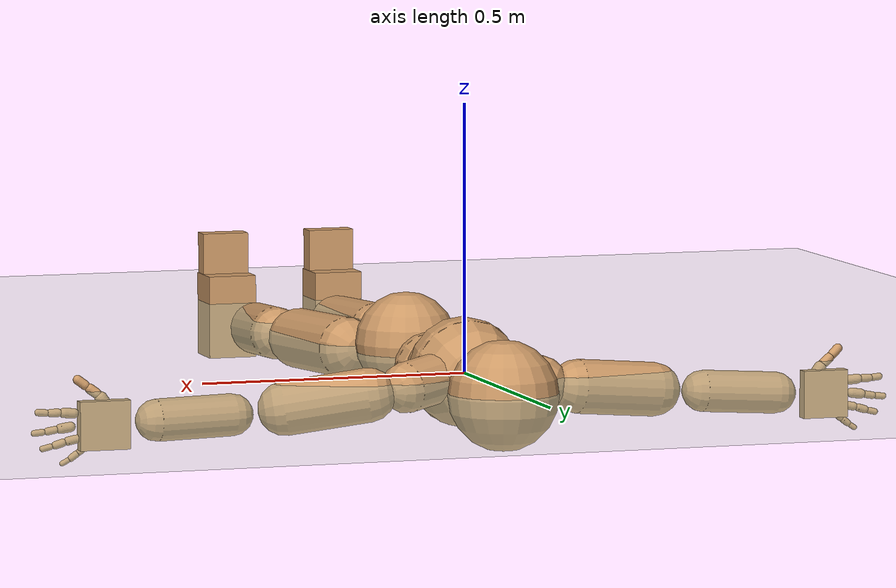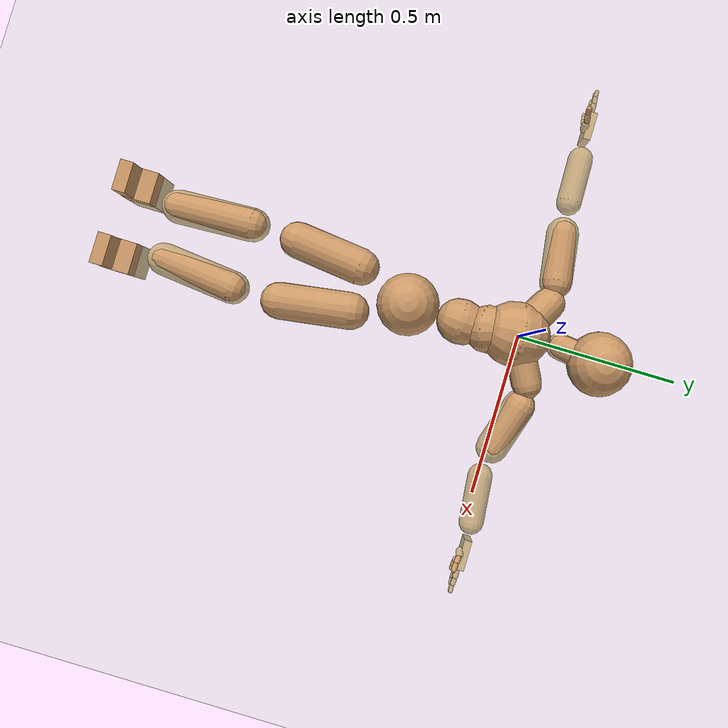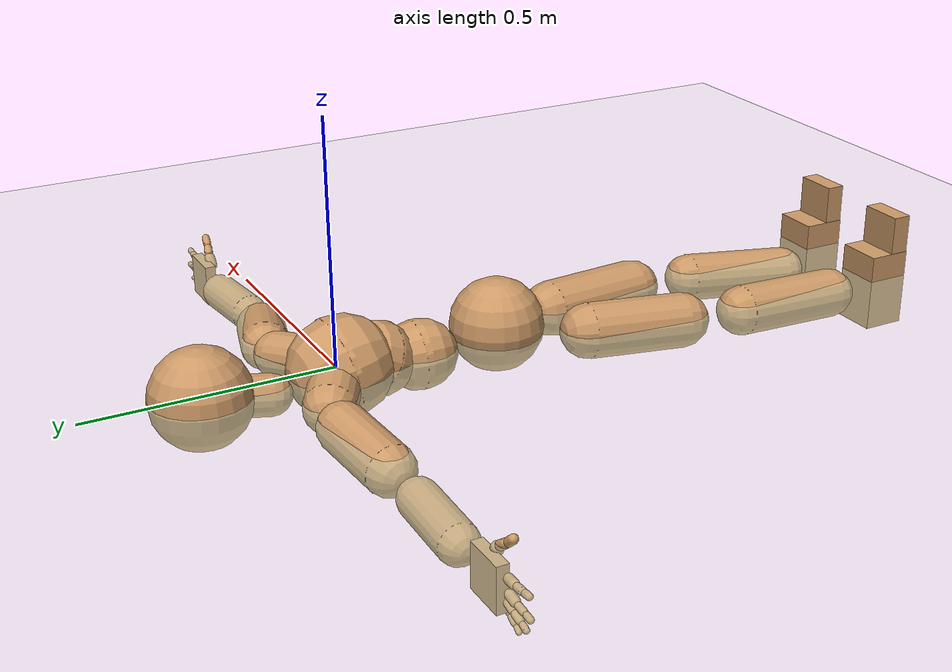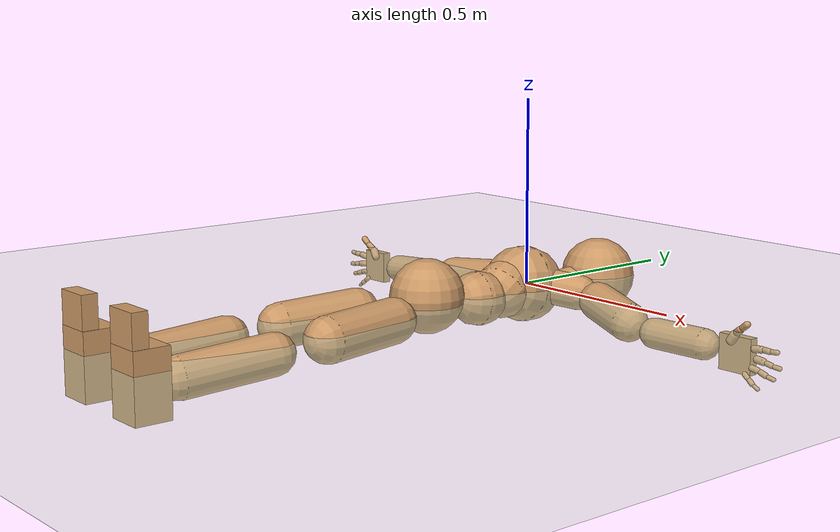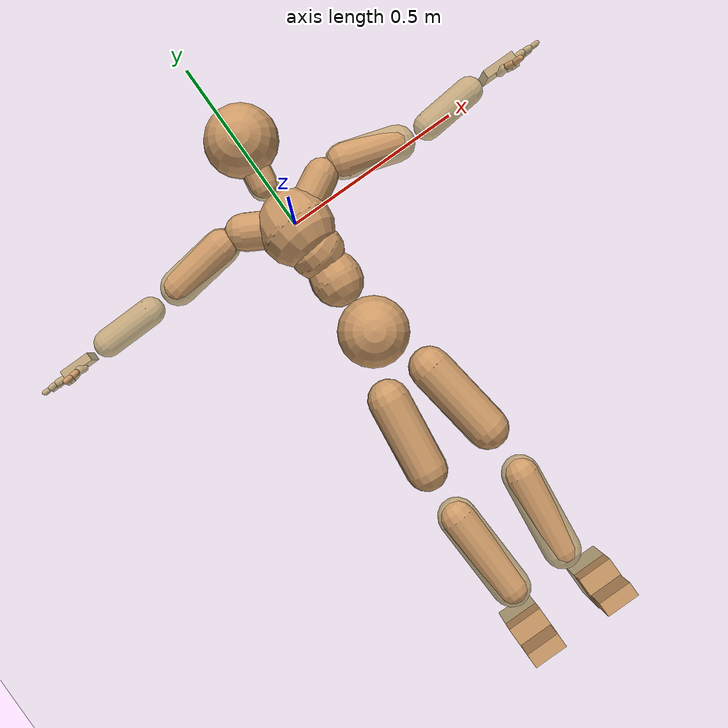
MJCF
<mujoco model="humanoid">
  <compiler coordinate="local"/>
  <default>
    <joint damping="0.0" armature="0.01" stiffness="0.0" limited="true"/>
    <geom conaffinity="1" condim="3" contype="7" margin="0.001" rgba="0.8 0.6 .4 1"/>
  </default>
  <asset>
    <texture type="skybox" builtin="gradient" rgb1=".4 .5 .6" rgb2="0 0 0" width="100" height="100"/>
    <texture builtin="flat" height="1278" mark="cross" markrgb="1 1 1" name="texgeom" random="0.01" rgb1="0.8 0.6 0.4" rgb2="0.8 0.6 0.4" type="cube" width="127"/>
    <texture builtin="checker" height="100" name="texplane" rgb1="0 0 0" rgb2="0.8 0.8 0.8" type="2d" width="100"/>
    <material name="MatPlane" reflectance="0.5" shininess="1" specular="1" texrepeat="60 60" texture="texplane"/>
    <material name="geom" texture="texgeom" texuniform="true"/>
  </asset>
  <worldbody>
    <light cutoff="100" diffuse="1 1 1" dir="-0 0 -1.3" directional="true" exponent="1" pos="0 0 1.3" specular=".1 .1 .1"/>
    <geom conaffinity="1" condim="3" name="floor" pos="0 0 0" rgba="0.8 0.9 0.8 1" size="100 100 .2" type="plane" material="MatPlane"/>
    <body name="Pelvis" pos="0.0031 -0.3527 0.015">
      <freejoint name="Pelvis"/>
      <geom type="sphere" contype="1" conaffinity="1" density="4629.6296296296305" size="0.0969" pos="0.0000 0.0000 0.0000" name="Pelvis"/>
      <body name="L_Hip" pos="0.058 -0.0915 -0.0248">
        <joint name="L_Hip_x" type="hinge" pos="0 0 0" axis="1 0 0" user="250 2.5 1 500 10 2" armature="0.01" range="-90.0000 90.0000" damping="0" stiffness="0"/>
        <joint name="L_Hip_y" type="hinge" pos="0 0 0" axis="0 1 0" user="250 2.5 1 500 10 2" armature="0.01" range="-90.0000 90.0000" damping="0" stiffness="0"/>
        <joint name="L_Hip_z" type="hinge" pos="0 0 0" axis="0 0 1" user="250 2.5 1 500 10 2" armature="0.01" range="-90.0000 90.0000" damping="0" stiffness="0"/>
        <geom type="capsule" contype="1" conaffinity="1" density="2040.816327" fromto="0.0106 -0.0738 -0.0023 0.0425 -0.2952 -0.0091" size="0.0586" name="L_Hip"/>
        <body name="L_Knee" pos="0.0531 -0.369 -0.0114">
          <joint name="L_Knee_x" type="hinge" pos="0 0 0" axis="1 0 0" user="250 2.5 1 500 10 2" armature="0.01" range="-180.0000 180.0000" damping="0" stiffness="0"/>
          <joint name="L_Knee_y" type="hinge" pos="0 0 0" axis="0 1 0" user="250 2.5 1 500 10 2" armature="0.01" range="-5.6250 5.6250" damping="0" stiffness="0"/>
          <joint name="L_Knee_z" type="hinge" pos="0 0 0" axis="0 0 1" user="250 2.5 1 500 10 2" armature="0.01" range="-5.6250 5.6250" damping="0" stiffness="0"/>
          <geom type="capsule" contype="1" conaffinity="1" density="1234.567901" fromto="-0.0085 -0.0789 -0.0063 -0.0340 -0.3154 -0.0252" size="0.0518" name="L_Knee"/>
          <body name="L_Ankle" pos="-0.0425 -0.3943 -0.0315">
            <joint name="L_Ankle_x" type="hinge" pos="0 0 0" axis="1 0 0" user="150 2.5 1 500 10 2" armature="0.01" range="-90.0000 90.0000" damping="0" stiffness="0"/>
            <joint name="L_Ankle_y" type="hinge" pos="0 0 0" axis="0 1 0" user="150 2.5 1 500 10 2" armature="0.01" range="-90.0000 90.0000" damping="0" stiffness="0"/>
            <joint name="L_Ankle_z" type="hinge" pos="0 0 0" axis="0 0 1" user="150 2.5 1 500 10 2" armature="0.01" range="-90.0000 90.0000" damping="0" stiffness="0"/>
            <geom type="box" density="444.077532" pos="0.0400 -0.0280 0.0230" size="0.0487 0.0455 0.083" quat="1.0000 0.0000 0.0000 0.0000" name="L_Ankle"/>
            <body name="L_Toe" pos="0.0464 -0.0568 0.1151">
              <joint name="L_Toe_x" type="hinge" pos="0 0 0" axis="1 0 0" user="150 1 1 500 1 1" armature="0.01" range="-90.0000 90.0000" damping="0" stiffness="0"/>
              <joint name="L_Toe_y" type="hinge" pos="0 0 0" axis="0 1 0" user="150 1 1 500 1 1" armature="0.01" range="-45.0000 45.0000" damping="0" stiffness="0"/>
              <joint name="L_Toe_z" type="hinge" pos="0 0 0" axis="0 0 1" user="150 1 1 500 1 1" armature="0.01" range="-45.0000 45.0000" damping="0" stiffness="0"/>
              <geom type="box" density="420.760963" pos="-0.0064 0.0033 0.0249" size="0.0469 0.02 0.0482" quat="1.0000 0.0000 0.0000 0.0000" name="L_Toe"/>
            </body>
          </body>
        </body>
      </body>
      <body name="R_Hip" pos="-0.063 -0.102 -0.0209">
        <joint name="R_Hip_x" type="hinge" pos="0 0 0" axis="1 0 0" user="250 2.5 1 500 10 2" armature="0.01" range="-90.0000 90.0000" damping="0" stiffness="0"/>
        <joint name="R_Hip_y" type="hinge" pos="0 0 0" axis="0 1 0" user="250 2.5 1 500 10 2" armature="0.01" range="-90.0000 90.0000" damping="0" stiffness="0"/>
        <joint name="R_Hip_z" type="hinge" pos="0 0 0" axis="0 0 1" user="250 2.5 1 500 10 2" armature="0.01" range="-90.0000 90.0000" damping="0" stiffness="0"/>
        <geom type="capsule" contype="1" conaffinity="1" density="2040.816327" fromto="-0.0086 -0.0707 -0.0036 -0.0343 -0.2827 -0.0145" size="0.0578" name="R_Hip"/>
        <body name="R_Knee" pos="-0.0429 -0.3534 -0.0181">
          <joint name="R_Knee_x" type="hinge" pos="0 0 0" axis="1 0 0" user="250 2.5 1 500 10 2" armature="0.01" range="-180.0000 180.0000" damping="0" stiffness="0"/>
          <joint name="R_Knee_y" type="hinge" pos="0 0 0" axis="0 1 0" user="250 2.5 1 500 10 2" armature="0.01" range="-5.6250 5.6250" damping="0" stiffness="0"/>
          <joint name="R_Knee_z" type="hinge" pos="0 0 0" axis="0 0 1" user="250 2.5 1 500 10 2" armature="0.01" range="-5.6250 5.6250" damping="0" stiffness="0"/>
          <geom type="capsule" contype="1" conaffinity="1" density="1234.567901" fromto="0.0030 -0.0803 -0.0040 0.0121 -0.3214 -0.0159" size="0.0535" name="R_Knee"/>
          <body name="R_Ankle" pos="0.0151 -0.4017 -0.0199">
            <joint name="R_Ankle_x" type="hinge" pos="0 0 0" axis="1 0 0" user="150 1 1 500 10 2" armature="0.01" range="-90.0000 90.0000" damping="0" stiffness="0"/>
            <joint name="R_Ankle_y" type="hinge" pos="0 0 0" axis="0 1 0" user="150 1 1 500 10 2" armature="0.01" range="-90.0000 90.0000" damping="0" stiffness="0"/>
            <joint name="R_Ankle_z" type="hinge" pos="0 0 0" axis="0 0 1" user="150 1 1 500 10 2" armature="0.01" range="-90.0000 90.0000" damping="0" stiffness="0"/>
            <geom type="box" density="444.06765" pos="-0.0240 -0.0257 0.0143" size="0.0487 0.0455 0.083" quat="1.0000 0.0000 0.0000 0.0000" name="R_Ankle"/>
            <body name="R_Toe" pos="-0.0382 -0.0572 0.1159">
              <joint name="R_Toe_x" type="hinge" pos="0 0 0" axis="1 0 0" user="150 1 1 500 1 1" armature="0.01" range="-90.0000 90.0000" damping="0" stiffness="0"/>
              <joint name="R_Toe_y" type="hinge" pos="0 0 0" axis="0 1 0" user="150 1 1 500 1 1" armature="0.01" range="-45.0000 45.0000" damping="0" stiffness="0"/>
              <joint name="R_Toe_z" type="hinge" pos="0 0 0" axis="0 0 1" user="150 1 1 500 1 1" armature="0.01" range="-45.0000 45.0000" damping="0" stiffness="0"/>
              <geom type="box" density="420.768399" pos="0.0142 0.0060 0.0153" size="0.0469 0.02 0.0482" quat="1.0000 0.0000 0.0000 0.0000" name="R_Toe"/>
            </body>
          </body>
        </body>
      </body>
      <body name="Torso" pos="-0.0024 0.1076 -0.0274">
        <joint name="Torso_x" type="hinge" pos="0 0 0" axis="1 0 0" user="500 5 1 500 10 2" armature="0.01" range="-60.0000 60.0000" damping="0" stiffness="0"/>
        <joint name="Torso_y" type="hinge" pos="0 0 0" axis="0 1 0" user="500 5 1 500 10 2" armature="0.01" range="-60.0000 60.0000" damping="0" stiffness="0"/>
        <joint name="Torso_z" type="hinge" pos="0 0 0" axis="0 0 1" user="500 5 1 500 10 2" armature="0.01" range="-60.0000 60.0000" damping="0" stiffness="0"/>
        <geom type="capsule" contype="1" conaffinity="1" density="2040.816327" fromto="0.0042 0.0583 -0.0024 0.0052 0.0712 -0.0030" size="0.0711" name="Torso"/>
        <body name="Spine" pos="0.0094 0.1295 -0.0054">
          <joint name="Spine_x" type="hinge" pos="0 0 0" axis="1 0 0" user="500 5 1 500 10 2" armature="0.01" range="-60.0000 60.0000" damping="0" stiffness="0"/>
          <joint name="Spine_y" type="hinge" pos="0 0 0" axis="0 1 0" user="500 5 1 500 10 2" armature="0.01" range="-60.0000 60.0000" damping="0" stiffness="0"/>
          <joint name="Spine_z" type="hinge" pos="0 0 0" axis="0 0 1" user="500 5 1 500 10 2" armature="0.01" range="-60.0000 60.0000" damping="0" stiffness="0"/>
          <geom type="capsule" contype="1" conaffinity="1" density="2040.816327" fromto="-0.0053 0.0224 0.0134 -0.0064 0.0274 0.0164" size="0.0752" name="Spine"/>
          <body name="Chest" pos="-0.0117 0.0498 0.0298">
            <joint name="Chest_x" type="hinge" pos="0 0 0" axis="1 0 0" user="500 5 1 500 10 2" armature="0.01" range="-60.0000 60.0000" damping="0" stiffness="0"/>
            <joint name="Chest_y" type="hinge" pos="0 0 0" axis="0 1 0" user="500 5 1 500 10 2" armature="0.01" range="-60.0000 60.0000" damping="0" stiffness="0"/>
            <joint name="Chest_z" type="hinge" pos="0 0 0" axis="0 0 1" user="500 5 1 500 10 2" armature="0.01" range="-60.0000 60.0000" damping="0" stiffness="0"/>
            <geom type="capsule" contype="1" conaffinity="1" density="2040.816327" fromto="-0.0019 0.0512 -0.0102 -0.0024 0.0625 -0.0125" size="0.1022" name="Chest"/>
            <body name="Neck" pos="-0.0118 0.1693 -0.0388">
              <joint name="Neck_x" type="hinge" pos="0 0 0" axis="1 0 0" user="150 1 1 250 50 4" armature="0.01" range="-180.0000 180.0000" damping="0" stiffness="0"/>
              <joint name="Neck_y" type="hinge" pos="0 0 0" axis="0 1 0" user="150 1 1 250 50 4" armature="0.01" range="-180.0000 180.0000" damping="0" stiffness="0"/>
              <joint name="Neck_z" type="hinge" pos="0 0 0" axis="0 0 1" user="150 1 1 250 50 4" armature="0.01" range="-180.0000 180.0000" damping="0" stiffness="0"/>
              <geom type="capsule" contype="1" conaffinity="1" density="1000" fromto="0.0048 0.0324 0.0039 0.0194 0.1297 0.0158" size="0.0415" name="Neck"/>
              <body name="Head" pos="0.0242 0.1621 0.0197">
                <joint name="Head_x" type="hinge" pos="0 0 0" axis="1 0 0" user="150 1 1 250 50 4" armature="0.01" range="-90.0000 90.0000" damping="0" stiffness="0"/>
                <joint name="Head_y" type="hinge" pos="0 0 0" axis="0 1 0" user="150 1 1 250 50 4" armature="0.01" range="-90.0000 90.0000" damping="0" stiffness="0"/>
                <joint name="Head_z" type="hinge" pos="0 0 0" axis="0 0 1" user="150 1 1 250 50 4" armature="0.01" range="-90.0000 90.0000" damping="0" stiffness="0"/>
                <geom type="sphere" contype="1" conaffinity="1" density="1000" size="0.1014" pos="0.0000 0.0000 0.0000" name="Head"/>
              </body>
            </body>
            <body name="L_Thorax" pos="0.0453 0.0861 -0.0117">
              <joint name="L_Thorax_x" type="hinge" pos="0 0 0" axis="1 0 0" user="200 2 1 500 50 4" armature="0.01" range="-180.0000 180.0000" damping="0" stiffness="0"/>
              <joint name="L_Thorax_y" type="hinge" pos="0 0 0" axis="0 1 0" user="200 2 1 500 50 4" armature="0.01" range="-180.0000 180.0000" damping="0" stiffness="0"/>
              <joint name="L_Thorax_z" type="hinge" pos="0 0 0" axis="0 0 1" user="200 2 1 500 50 4" armature="0.01" range="-180.0000 180.0000" damping="0" stiffness="0"/>
              <geom type="capsule" contype="1" conaffinity="1" density="1000" fromto="0.0224 0.0121 -0.0032 0.0896 0.0483 -0.0128" size="0.0472" name="L_Thorax"/>
              <body name="L_Shoulder" pos="0.1119 0.0604 -0.016">
                <joint name="L_Shoulder_x" type="hinge" pos="0 0 0" axis="1 0 0" user="200 2 1 500 50 4" armature="0.01" range="-180.0000 180.0000" damping="0" stiffness="0"/>
                <joint name="L_Shoulder_y" type="hinge" pos="0 0 0" axis="0 1 0" user="200 2 1 500 50 4" armature="0.01" range="-180.0000 180.0000" damping="0" stiffness="0"/>
                <joint name="L_Shoulder_z" type="hinge" pos="0 0 0" axis="0 0 1" user="200 2 1 500 50 4" armature="0.01" range="-180.0000 180.0000" damping="0" stiffness="0"/>
                <geom type="capsule" contype="1" conaffinity="1" density="1000" fromto="0.0491 -0.0139 -0.0079 0.1962 -0.0555 -0.0318" size="0.0505" name="L_Shoulder"/>
                <body name="L_Elbow" pos="0.2453 -0.0694 -0.0397">
                  <joint name="L_Elbow_x" type="hinge" pos="0 0 0" axis="1 0 0" user="150 1 1 150 10 2" armature="0.01" range="-720.0000 720.0000" damping="0" stiffness="0"/>
                  <joint name="L_Elbow_y" type="hinge" pos="0 0 0" axis="0 1 0" user="150 1 1 150 10 2" armature="0.01" range="-720.0000 720.0000" damping="0" stiffness="0"/>
                  <joint name="L_Elbow_z" type="hinge" pos="0 0 0" axis="0 0 1" user="150 1 1 150 10 2" armature="0.01" range="-720.0000 720.0000" damping="0" stiffness="0"/>
                  <geom type="capsule" contype="1" conaffinity="1" density="1000" fromto="0.0486 0.0047 -0.0007 0.1945 0.0189 -0.0028" size="0.0389" name="L_Elbow"/>
                  <body name="L_Wrist" pos="0.2431 0.0236 -0.0035">
                    <joint name="L_Wrist_x" type="hinge" pos="0 0 0" axis="1 0 0" user="100 1 1 150 1 1" armature="0.01" range="-180.0000 180.0000" damping="0" stiffness="0"/>
                    <joint name="L_Wrist_y" type="hinge" pos="0 0 0" axis="0 1 0" user="100 1 1 150 1 1" armature="0.01" range="-180.0000 180.0000" damping="0" stiffness="0"/>
                    <joint name="L_Wrist_z" type="hinge" pos="0 0 0" axis="0 0 1" user="100 1 1 150 1 1" armature="0.01" range="-180.0000 180.0000" damping="0" stiffness="0"/>
                    <geom type="box" density="1202.754643" pos="0.0505 -0.0010 -0.0032" size="0.0469 0.0118 0.0448" quat="1.0000 0.0000 0.0000 0.0000" name="L_Wrist"/>
                    <body name="L_Index1" pos="0.0986 -0.0082 0.0188">
                      <joint name="L_Index1_x" type="hinge" pos="0 0 0" axis="1 0 0" user="100 10 1 150" armature="0.01" range="-180.0000 180.0000" damping="0" stiffness="0"/>
                      <joint name="L_Index1_y" type="hinge" pos="0 0 0" axis="0 1 0" user="100 10 1 150" armature="0.01" range="-180.0000 180.0000" damping="0" stiffness="0"/>
                      <joint name="L_Index1_z" type="hinge" pos="0 0 0" axis="0 0 1" user="100 10 1 150" armature="0.01" range="-180.0000 180.0000" damping="0" stiffness="0"/>
                      <geom type="capsule" contype="1" conaffinity="1" density="1000" fromto="0.0063 0.0004 0.0006 0.0250 0.0017 0.0023" size="0.009" name="L_Index1"/>
                      <body name="L_Index2" pos="0.0313 0.0022 0.0029">
                        <joint name="L_Index2_x" type="hinge" pos="0 0 0" axis="1 0 0" user="100 10 1 150" armature="0.01" range="-180.0000 180.0000" damping="0" stiffness="0"/>
                        <joint name="L_Index2_y" type="hinge" pos="0 0 0" axis="0 1 0" user="100 10 1 150" armature="0.01" range="-180.0000 180.0000" damping="0" stiffness="0"/>
                        <joint name="L_Index2_z" type="hinge" pos="0 0 0" axis="0 0 1" user="100 10 1 150" armature="0.01" range="-180.0000 180.0000" damping="0" stiffness="0"/>
                        <geom type="capsule" contype="1" conaffinity="1" density="1000" fromto="0.0044 -0.0005 0.0000 0.0176 -0.0018 0.0000" size="0.0074" name="L_Index2"/>
                        <body name="L_Index3" pos="0.022 -0.0023 0.0001">
                          <joint name="L_Index3_x" type="hinge" pos="0 0 0" axis="1 0 0" user="100 10 1 150" armature="0.01" range="-180.0000 180.0000" damping="0" stiffness="0"/>
                          <joint name="L_Index3_y" type="hinge" pos="0 0 0" axis="0 1 0" user="100 10 1 150" armature="0.01" range="-180.0000 180.0000" damping="0" stiffness="0"/>
                          <joint name="L_Index3_z" type="hinge" pos="0 0 0" axis="0 0 1" user="100 10 1 150" armature="0.01" range="-180.0000 180.0000" damping="0" stiffness="0"/>
                          <geom type="capsule" contype="1" conaffinity="1" density="1000" fromto="0.0048 -0.0001 0.0004 0.0192 -0.0002 0.0016" size="0.0063" name="L_Index3"/>
                        </body>
                      </body>
                    </body>
                    <body name="L_Middle1" pos="0.1058 -0.006 -0.004">
                      <joint name="L_Middle1_x" type="hinge" pos="0 0 0" axis="1 0 0" user="100 10 1 150" armature="0.01" range="-180.0000 180.0000" damping="0" stiffness="0"/>
                      <joint name="L_Middle1_y" type="hinge" pos="0 0 0" axis="0 1 0" user="100 10 1 150" armature="0.01" range="-180.0000 180.0000" damping="0" stiffness="0"/>
                      <joint name="L_Middle1_z" type="hinge" pos="0 0 0" axis="0 0 1" user="100 10 1 150" armature="0.01" range="-180.0000 180.0000" damping="0" stiffness="0"/>
                      <geom type="capsule" contype="1" conaffinity="1" density="1000" fromto="0.0060 0.0002 -0.0008 0.0239 0.0007 -0.0032" size="0.0092" name="L_Middle1"/>
                      <body name="L_Middle2" pos="0.0299 0.0008 -0.0041">
                        <joint name="L_Middle2_x" type="hinge" pos="0 0 0" axis="1 0 0" user="100 10 1 150" armature="0.01" range="-180.0000 180.0000" damping="0" stiffness="0"/>
                        <joint name="L_Middle2_y" type="hinge" pos="0 0 0" axis="0 1 0" user="100 10 1 150" armature="0.01" range="-180.0000 180.0000" damping="0" stiffness="0"/>
                        <joint name="L_Middle2_z" type="hinge" pos="0 0 0" axis="0 0 1" user="100 10 1 150" armature="0.01" range="-180.0000 180.0000" damping="0" stiffness="0"/>
                        <geom type="capsule" contype="1" conaffinity="1" density="1000" fromto="0.0046 -0.0004 -0.0008 0.0184 -0.0015 -0.0033" size="0.0068" name="L_Middle2"/>
                        <body name="L_Middle3" pos="0.023 -0.0019 -0.0041">
                          <joint name="L_Middle3_x" type="hinge" pos="0 0 0" axis="1 0 0" user="100 10 1 150" armature="0.01" range="-180.0000 180.0000" damping="0" stiffness="0"/>
                          <joint name="L_Middle3_y" type="hinge" pos="0 0 0" axis="0 1 0" user="100 10 1 150" armature="0.01" range="-180.0000 180.0000" damping="0" stiffness="0"/>
                          <joint name="L_Middle3_z" type="hinge" pos="0 0 0" axis="0 0 1" user="100 10 1 150" armature="0.01" range="-180.0000 180.0000" damping="0" stiffness="0"/>
                          <geom type="capsule" contype="1" conaffinity="1" density="1000" fromto="0.0050 0.0000 -0.0004 0.0200 0.0001 -0.0017" size="0.0059" name="L_Middle3"/>
                        </body>
                      </body>
                    </body>
                    <body name="L_Pinky1" pos="0.0812 -0.0143 -0.0428">
                      <joint name="L_Pinky1_x" type="hinge" pos="0 0 0" axis="1 0 0" user="100 10 1 150" armature="0.01" range="-180.0000 180.0000" damping="0" stiffness="0"/>
                      <joint name="L_Pinky1_y" type="hinge" pos="0 0 0" axis="0 1 0" user="100 10 1 150" armature="0.01" range="-180.0000 180.0000" damping="0" stiffness="0"/>
                      <joint name="L_Pinky1_z" type="hinge" pos="0 0 0" axis="0 0 1" user="100 10 1 150" armature="0.01" range="-180.0000 180.0000" damping="0" stiffness="0"/>
                      <geom type="capsule" contype="1" conaffinity="1" density="1000" fromto="0.0030 -0.0002 -0.0023 0.0120 -0.0008 -0.0094" size="0.0066" name="L_Pinky1"/>
                      <body name="L_Pinky2" pos="0.015 -0.001 -0.0117">
                        <joint name="L_Pinky2_x" type="hinge" pos="0 0 0" axis="1 0 0" user="100 10 1 150" armature="0.01" range="-180.0000 180.0000" damping="0" stiffness="0"/>
                        <joint name="L_Pinky2_y" type="hinge" pos="0 0 0" axis="0 1 0" user="100 10 1 150" armature="0.01" range="-180.0000 180.0000" damping="0" stiffness="0"/>
                        <joint name="L_Pinky2_z" type="hinge" pos="0 0 0" axis="0 0 1" user="100 10 1 150" armature="0.01" range="-180.0000 180.0000" damping="0" stiffness="0"/>
                        <geom type="capsule" contype="1" conaffinity="1" density="1000" fromto="0.0030 -0.0003 -0.0022 0.0121 -0.0012 -0.0088" size="0.0064" name="L_Pinky2"/>
                        <body name="L_Pinky3" pos="0.0151 -0.0016 -0.011">
                          <joint name="L_Pinky3_x" type="hinge" pos="0 0 0" axis="1 0 0" user="100 10 1 150" armature="0.01" range="-180.0000 180.0000" damping="0" stiffness="0"/>
                          <joint name="L_Pinky3_y" type="hinge" pos="0 0 0" axis="0 1 0" user="100 10 1 150" armature="0.01" range="-180.0000 180.0000" damping="0" stiffness="0"/>
                          <joint name="L_Pinky3_z" type="hinge" pos="0 0 0" axis="0 0 1" user="100 10 1 150" armature="0.01" range="-180.0000 180.0000" damping="0" stiffness="0"/>
                          <geom type="capsule" contype="1" conaffinity="1" density="1000" fromto="0.0034 0.0001 -0.0018 0.0137 0.0004 -0.0072" size="0.0049" name="L_Pinky3"/>
                        </body>
                      </body>
                    </body>
                    <body name="L_Ring1" pos="0.0942 -0.009 -0.0268">
                      <joint name="L_Ring1_x" type="hinge" pos="0 0 0" axis="1 0 0" user="100 10 1 150" armature="0.01" range="-180.0000 180.0000" damping="0" stiffness="0"/>
                      <joint name="L_Ring1_y" type="hinge" pos="0 0 0" axis="0 1 0" user="100 10 1 150" armature="0.01" range="-180.0000 180.0000" damping="0" stiffness="0"/>
                      <joint name="L_Ring1_z" type="hinge" pos="0 0 0" axis="0 0 1" user="100 10 1 150" armature="0.01" range="-180.0000 180.0000" damping="0" stiffness="0"/>
                      <geom type="capsule" contype="1" conaffinity="1" density="1000" fromto="0.0055 0.0003 -0.0010 0.0219 0.0012 -0.0041" size="0.0078" name="L_Ring1"/>
                      <body name="L_Ring2" pos="0.0273 0.0015 -0.0052">
                        <joint name="L_Ring2_x" type="hinge" pos="0 0 0" axis="1 0 0" user="100 10 1 150" armature="0.01" range="-180.0000 180.0000" damping="0" stiffness="0"/>
                        <joint name="L_Ring2_y" type="hinge" pos="0 0 0" axis="0 1 0" user="100 10 1 150" armature="0.01" range="-180.0000 180.0000" damping="0" stiffness="0"/>
                        <joint name="L_Ring2_z" type="hinge" pos="0 0 0" axis="0 0 1" user="100 10 1 150" armature="0.01" range="-180.0000 180.0000" damping="0" stiffness="0"/>
                        <geom type="capsule" contype="1" conaffinity="1" density="1000" fromto="0.0045 -0.0003 -0.0014 0.0178 -0.0011 -0.0056" size="0.0073" name="L_Ring2"/>
                        <body name="L_Ring3" pos="0.0223 -0.0014 -0.007">
                          <joint name="L_Ring3_x" type="hinge" pos="0 0 0" axis="1 0 0" user="100 10 1 150" armature="0.01" range="-180.0000 180.0000" damping="0" stiffness="0"/>
                          <joint name="L_Ring3_y" type="hinge" pos="0 0 0" axis="0 1 0" user="100 10 1 150" armature="0.01" range="-180.0000 180.0000" damping="0" stiffness="0"/>
                          <joint name="L_Ring3_z" type="hinge" pos="0 0 0" axis="0 0 1" user="100 10 1 150" armature="0.01" range="-180.0000 180.0000" damping="0" stiffness="0"/>
                          <geom type="capsule" contype="1" conaffinity="1" density="1000" fromto="0.0049 0.0001 -0.0010 0.0194 0.0005 -0.0040" size="0.0056" name="L_Ring3"/>
                        </body>
                      </body>
                    </body>
                    <body name="L_Thumb1" pos="0.0389 -0.0172 0.025">
                      <joint name="L_Thumb1_x" type="hinge" pos="0 0 0" axis="1 0 0" user="100 10 1 150" armature="0.01" range="-180.0000 180.0000" damping="0" stiffness="0"/>
                      <joint name="L_Thumb1_y" type="hinge" pos="0 0 0" axis="0 1 0" user="100 10 1 150" armature="0.01" range="-180.0000 180.0000" damping="0" stiffness="0"/>
                      <joint name="L_Thumb1_z" type="hinge" pos="0 0 0" axis="0 0 1" user="100 10 1 150" armature="0.01" range="-180.0000 180.0000" damping="0" stiffness="0"/>
                      <geom type="capsule" contype="1" conaffinity="1" density="1000" fromto="0.0033 0.0002 0.0048 0.0133 0.0007 0.0194" size="0.0117" name="L_Thumb1"/>
                      <body name="L_Thumb2" pos="0.0166 0.0009 0.0242">
                        <joint name="L_Thumb2_x" type="hinge" pos="0 0 0" axis="1 0 0" user="100 10 1 150" armature="0.01" range="-180.0000 180.0000" damping="0" stiffness="0"/>
                        <joint name="L_Thumb2_y" type="hinge" pos="0 0 0" axis="0 1 0" user="100 10 1 150" armature="0.01" range="-180.0000 180.0000" damping="0" stiffness="0"/>
                        <joint name="L_Thumb2_z" type="hinge" pos="0 0 0" axis="0 0 1" user="100 10 1 150" armature="0.01" range="-180.0000 180.0000" damping="0" stiffness="0"/>
                        <geom type="capsule" contype="1" conaffinity="1" density="1000" fromto="0.0040 -0.0010 0.0030 0.0161 -0.0040 0.0120" size="0.0092" name="L_Thumb2"/>
                        <body name="L_Thumb3" pos="0.0201 -0.005 0.0151">
                          <joint name="L_Thumb3_x" type="hinge" pos="0 0 0" axis="1 0 0" user="100 10 1 150" armature="0.01" range="-180.0000 180.0000" damping="0" stiffness="0"/>
                          <joint name="L_Thumb3_y" type="hinge" pos="0 0 0" axis="0 1 0" user="100 10 1 150" armature="0.01" range="-180.0000 180.0000" damping="0" stiffness="0"/>
                          <joint name="L_Thumb3_z" type="hinge" pos="0 0 0" axis="0 0 1" user="100 10 1 150" armature="0.01" range="-180.0000 180.0000" damping="0" stiffness="0"/>
                          <geom type="capsule" contype="1" conaffinity="1" density="1000" fromto="0.0044 -0.0006 0.0034 0.0177 -0.0024 0.0136" size="0.0085" name="L_Thumb3"/>
                        </body>
                      </body>
                    </body>
                  </body>
                </body>
              </body>
            </body>
            <body name="R_Thorax" pos="-0.0465 0.0857 -0.0177">
              <joint name="R_Thorax_x" type="hinge" pos="0 0 0" axis="1 0 0" user="200 2 1 150 10 2" armature="0.01" range="-180.0000 180.0000" damping="0" stiffness="0"/>
              <joint name="R_Thorax_y" type="hinge" pos="0 0 0" axis="0 1 0" user="200 2 1 150 10 2" armature="0.01" range="-180.0000 180.0000" damping="0" stiffness="0"/>
              <joint name="R_Thorax_z" type="hinge" pos="0 0 0" axis="0 0 1" user="200 2 1 150 10 2" armature="0.01" range="-180.0000 180.0000" damping="0" stiffness="0"/>
              <geom type="capsule" contype="1" conaffinity="1" density="1000" fromto="-0.0191 0.0111 -0.0026 -0.0766 0.0443 -0.0104" size="0.0521" name="R_Thorax"/>
              <body name="R_Shoulder" pos="-0.0957 0.0554 -0.013">
                <joint name="R_Shoulder_x" type="hinge" pos="0 0 0" axis="1 0 0" user="200 2 1 250 10 2" armature="0.01" range="-180.0000 180.0000" damping="0" stiffness="0"/>
                <joint name="R_Shoulder_y" type="hinge" pos="0 0 0" axis="0 1 0" user="200 2 1 250 10 2" armature="0.01" range="-180.0000 180.0000" damping="0" stiffness="0"/>
                <joint name="R_Shoulder_z" type="hinge" pos="0 0 0" axis="0 0 1" user="200 2 1 250 10 2" armature="0.01" range="-180.0000 180.0000" damping="0" stiffness="0"/>
                <geom type="capsule" contype="1" conaffinity="1" density="1000" fromto="-0.0523 -0.0068 -0.0049 -0.2092 -0.0271 -0.0194" size="0.0504" name="R_Shoulder"/>
                <body name="R_Elbow" pos="-0.2615 -0.0338 -0.0243">
                  <joint name="R_Elbow_x" type="hinge" pos="0 0 0" axis="1 0 0" user="150 1 1 150 10 2" armature="0.01" range="-720.0000 720.0000" damping="0" stiffness="0"/>
                  <joint name="R_Elbow_y" type="hinge" pos="0 0 0" axis="0 1 0" user="150 1 1 150 10 2" armature="0.01" range="-720.0000 720.0000" damping="0" stiffness="0"/>
                  <joint name="R_Elbow_z" type="hinge" pos="0 0 0" axis="0 0 1" user="150 1 1 150 10 2" armature="0.01" range="-720.0000 720.0000" damping="0" stiffness="0"/>
                  <geom type="capsule" contype="1" conaffinity="1" density="1000" fromto="-0.0481 -0.0007 -0.0032 -0.1926 -0.0029 -0.0127" size="0.0392" name="R_Elbow"/>
                  <body name="R_Wrist" pos="-0.2407 -0.0036 -0.0159">
                    <joint name="R_Wrist_x" type="hinge" pos="0 0 0" axis="1 0 0" user="100 1 1 150 1 1" armature="0.01" range="-180.0000 180.0000" damping="0" stiffness="0"/>
                    <joint name="R_Wrist_y" type="hinge" pos="0 0 0" axis="0 1 0" user="100 1 1 150 1 1" armature="0.01" range="-180.0000 180.0000" damping="0" stiffness="0"/>
                    <joint name="R_Wrist_z" type="hinge" pos="0 0 0" axis="0 0 1" user="100 1 1 150 1 1" armature="0.01" range="-180.0000 180.0000" damping="0" stiffness="0"/>
                    <geom type="box" density="1239.521426" pos="-0.0520 -0.0040 -0.0032" size="0.0439 0.0118 0.0448" quat="1.0000 0.0000 0.0000 0.0000" name="R_Wrist"/>
                    <body name="R_Index1" pos="-0.0966 -0.0113 0.0189">
                      <joint name="R_Index1_x" type="hinge" pos="0 0 0" axis="1 0 0" user="100 10 1 150" armature="0.01" range="-180.0000 180.0000" damping="0" stiffness="0"/>
                      <joint name="R_Index1_y" type="hinge" pos="0 0 0" axis="0 1 0" user="100 10 1 150" armature="0.01" range="-180.0000 180.0000" damping="0" stiffness="0"/>
                      <joint name="R_Index1_z" type="hinge" pos="0 0 0" axis="0 0 1" user="100 10 1 150" armature="0.01" range="-180.0000 180.0000" damping="0" stiffness="0"/>
                      <geom type="capsule" contype="1" conaffinity="1" density="1000" fromto="-0.0063 0.0004 0.0006 -0.0250 0.0017 0.0023" size="0.009" name="R_Index1"/>
                      <body name="R_Index2" pos="-0.0313 0.0022 0.0029">
                        <joint name="R_Index2_x" type="hinge" pos="0 0 0" axis="1 0 0" user="100 10 1 150" armature="0.01" range="-180.0000 180.0000" damping="0" stiffness="0"/>
                        <joint name="R_Index2_y" type="hinge" pos="0 0 0" axis="0 1 0" user="100 10 1 150" armature="0.01" range="-180.0000 180.0000" damping="0" stiffness="0"/>
                        <joint name="R_Index2_z" type="hinge" pos="0 0 0" axis="0 0 1" user="100 10 1 150" armature="0.01" range="-180.0000 180.0000" damping="0" stiffness="0"/>
                        <geom type="capsule" contype="1" conaffinity="1" density="1000" fromto="-0.0044 -0.0005 0.0000 -0.0176 -0.0018 0.0000" size="0.0074" name="R_Index2"/>
                        <body name="R_Index3" pos="-0.022 -0.0023 0.0001">
                          <joint name="R_Index3_x" type="hinge" pos="0 0 0" axis="1 0 0" user="100 10 1 150" armature="0.01" range="-180.0000 180.0000" damping="0" stiffness="0"/>
                          <joint name="R_Index3_y" type="hinge" pos="0 0 0" axis="0 1 0" user="100 10 1 150" armature="0.01" range="-180.0000 180.0000" damping="0" stiffness="0"/>
                          <joint name="R_Index3_z" type="hinge" pos="0 0 0" axis="0 0 1" user="100 10 1 150" armature="0.01" range="-180.0000 180.0000" damping="0" stiffness="0"/>
                          <geom type="capsule" contype="1" conaffinity="1" density="1000" fromto="-0.0040 -0.0001 0.0004 -0.0160 -0.0002 0.0016" size="0.0066" name="R_Index3"/>
                        </body>
                      </body>
                    </body>
                    <body name="R_Middle1" pos="-0.1039 -0.009 -0.004">
                      <joint name="R_Middle1_x" type="hinge" pos="0 0 0" axis="1 0 0" user="100 10 1 150" armature="0.01" range="-180.0000 180.0000" damping="0" stiffness="0"/>
                      <joint name="R_Middle1_y" type="hinge" pos="0 0 0" axis="0 1 0" user="100 10 1 150" armature="0.01" range="-180.0000 180.0000" damping="0" stiffness="0"/>
                      <joint name="R_Middle1_z" type="hinge" pos="0 0 0" axis="0 0 1" user="100 10 1 150" armature="0.01" range="-180.0000 180.0000" damping="0" stiffness="0"/>
                      <geom type="capsule" contype="1" conaffinity="1" density="1000" fromto="-0.0060 0.0002 -0.0008 -0.0239 0.0007 -0.0032" size="0.0092" name="R_Middle1"/>
                      <body name="R_Middle2" pos="-0.0299 0.0008 -0.0041">
                        <joint name="R_Middle2_x" type="hinge" pos="0 0 0" axis="1 0 0" user="100 10 1 150" armature="0.01" range="-180.0000 180.0000" damping="0" stiffness="0"/>
                        <joint name="R_Middle2_y" type="hinge" pos="0 0 0" axis="0 1 0" user="100 10 1 150" armature="0.01" range="-180.0000 180.0000" damping="0" stiffness="0"/>
                        <joint name="R_Middle2_z" type="hinge" pos="0 0 0" axis="0 0 1" user="100 10 1 150" armature="0.01" range="-180.0000 180.0000" damping="0" stiffness="0"/>
                        <geom type="capsule" contype="1" conaffinity="1" density="1000" fromto="-0.0046 -0.0004 -0.0008 -0.0184 -0.0015 -0.0033" size="0.0068" name="R_Middle2"/>
                        <body name="R_Middle3" pos="-0.023 -0.0019 -0.0041">
                          <joint name="R_Middle3_x" type="hinge" pos="0 0 0" axis="1 0 0" user="100 10 1 150" armature="0.01" range="-180.0000 180.0000" damping="0" stiffness="0"/>
                          <joint name="R_Middle3_y" type="hinge" pos="0 0 0" axis="0 1 0" user="100 10 1 150" armature="0.01" range="-180.0000 180.0000" damping="0" stiffness="0"/>
                          <joint name="R_Middle3_z" type="hinge" pos="0 0 0" axis="0 0 1" user="100 10 1 150" armature="0.01" range="-180.0000 180.0000" damping="0" stiffness="0"/>
                          <geom type="capsule" contype="1" conaffinity="1" density="1000" fromto="-0.0042 0.0000 -0.0004 -0.0168 0.0001 -0.0017" size="0.0062" name="R_Middle3"/>
                        </body>
                      </body>
                    </body>
                    <body name="R_Pinky1" pos="-0.0792 -0.0173 -0.0427">
                      <joint name="R_Pinky1_x" type="hinge" pos="0 0 0" axis="1 0 0" user="100 10 1 150" armature="0.01" range="-180.0000 180.0000" damping="0" stiffness="0"/>
                      <joint name="R_Pinky1_y" type="hinge" pos="0 0 0" axis="0 1 0" user="100 10 1 150" armature="0.01" range="-180.0000 180.0000" damping="0" stiffness="0"/>
                      <joint name="R_Pinky1_z" type="hinge" pos="0 0 0" axis="0 0 1" user="100 10 1 150" armature="0.01" range="-180.0000 180.0000" damping="0" stiffness="0"/>
                      <geom type="capsule" contype="1" conaffinity="1" density="1000" fromto="-0.0030 -0.0002 -0.0023 -0.0120 -0.0008 -0.0094" size="0.0066" name="R_Pinky1"/>
                      <body name="R_Pinky2" pos="-0.015 -0.001 -0.0117">
                        <joint name="R_Pinky2_x" type="hinge" pos="0 0 0" axis="1 0 0" user="100 10 1 150" armature="0.01" range="-180.0000 180.0000" damping="0" stiffness="0"/>
                        <joint name="R_Pinky2_y" type="hinge" pos="0 0 0" axis="0 1 0" user="100 10 1 150" armature="0.01" range="-180.0000 180.0000" damping="0" stiffness="0"/>
                        <joint name="R_Pinky2_z" type="hinge" pos="0 0 0" axis="0 0 1" user="100 10 1 150" armature="0.01" range="-180.0000 180.0000" damping="0" stiffness="0"/>
                        <geom type="capsule" contype="1" conaffinity="1" density="1000" fromto="-0.0030 -0.0003 -0.0022 -0.0121 -0.0012 -0.0088" size="0.0064" name="R_Pinky2"/>
                        <body name="R_Pinky3" pos="-0.0151 -0.0016 -0.011">
                          <joint name="R_Pinky3_x" type="hinge" pos="0 0 0" axis="1 0 0" user="100 10 1 150" armature="0.01" range="-180.0000 180.0000" damping="0" stiffness="0"/>
                          <joint name="R_Pinky3_y" type="hinge" pos="0 0 0" axis="0 1 0" user="100 10 1 150" armature="0.01" range="-180.0000 180.0000" damping="0" stiffness="0"/>
                          <joint name="R_Pinky3_z" type="hinge" pos="0 0 0" axis="0 0 1" user="100 10 1 150" armature="0.01" range="-180.0000 180.0000" damping="0" stiffness="0"/>
                          <geom type="capsule" contype="1" conaffinity="1" density="1000" fromto="-0.0026 0.0001 -0.0018 -0.0105 0.0004 -0.0072" size="0.0051" name="R_Pinky3"/>
                        </body>
                      </body>
                    </body>
                    <body name="R_Ring1" pos="-0.0922 -0.012 -0.0268">
                      <joint name="R_Ring1_x" type="hinge" pos="0 0 0" axis="1 0 0" user="100 10 1 150" armature="0.01" range="-180.0000 180.0000" damping="0" stiffness="0"/>
                      <joint name="R_Ring1_y" type="hinge" pos="0 0 0" axis="0 1 0" user="100 10 1 150" armature="0.01" range="-180.0000 180.0000" damping="0" stiffness="0"/>
                      <joint name="R_Ring1_z" type="hinge" pos="0 0 0" axis="0 0 1" user="100 10 1 150" armature="0.01" range="-180.0000 180.0000" damping="0" stiffness="0"/>
                      <geom type="capsule" contype="1" conaffinity="1" density="1000" fromto="-0.0055 0.0003 -0.0010 -0.0219 0.0012 -0.0041" size="0.0078" name="R_Ring1"/>
                      <body name="R_Ring2" pos="-0.0273 0.0015 -0.0052">
                        <joint name="R_Ring2_x" type="hinge" pos="0 0 0" axis="1 0 0" user="100 10 1 150" armature="0.01" range="-180.0000 180.0000" damping="0" stiffness="0"/>
                        <joint name="R_Ring2_y" type="hinge" pos="0 0 0" axis="0 1 0" user="100 10 1 150" armature="0.01" range="-180.0000 180.0000" damping="0" stiffness="0"/>
                        <joint name="R_Ring2_z" type="hinge" pos="0 0 0" axis="0 0 1" user="100 10 1 150" armature="0.01" range="-180.0000 180.0000" damping="0" stiffness="0"/>
                        <geom type="capsule" contype="1" conaffinity="1" density="1000" fromto="-0.0045 -0.0003 -0.0014 -0.0178 -0.0011 -0.0056" size="0.0073" name="R_Ring2"/>
                        <body name="R_Ring3" pos="-0.0223 -0.0014 -0.007">
                          <joint name="R_Ring3_x" type="hinge" pos="0 0 0" axis="1 0 0" user="100 10 1 150" armature="0.01" range="-180.0000 180.0000" damping="0" stiffness="0"/>
                          <joint name="R_Ring3_y" type="hinge" pos="0 0 0" axis="0 1 0" user="100 10 1 150" armature="0.01" range="-180.0000 180.0000" damping="0" stiffness="0"/>
                          <joint name="R_Ring3_z" type="hinge" pos="0 0 0" axis="0 0 1" user="100 10 1 150" armature="0.01" range="-180.0000 180.0000" damping="0" stiffness="0"/>
                          <geom type="capsule" contype="1" conaffinity="1" density="1000" fromto="-0.0041 0.0001 -0.0010 -0.0162 0.0005 -0.0040" size="0.0059" name="R_Ring3"/>
                        </body>
                      </body>
                    </body>
                    <body name="R_Thumb1" pos="-0.0369 -0.0202 0.025">
                      <joint name="R_Thumb1_x" type="hinge" pos="0 0 0" axis="1 0 0" user="100 10 1 150" armature="0.01" range="-180.0000 180.0000" damping="0" stiffness="0"/>
                      <joint name="R_Thumb1_y" type="hinge" pos="0 0 0" axis="0 1 0" user="100 10 1 150" armature="0.01" range="-180.0000 180.0000" damping="0" stiffness="0"/>
                      <joint name="R_Thumb1_z" type="hinge" pos="0 0 0" axis="0 0 1" user="100 10 1 150" armature="0.01" range="-180.0000 180.0000" damping="0" stiffness="0"/>
                      <geom type="capsule" contype="1" conaffinity="1" density="1000" fromto="-0.0033 0.0002 0.0048 -0.0133 0.0007 0.0194" size="0.0117" name="R_Thumb1"/>
                      <body name="R_Thumb2" pos="-0.0166 0.0009 0.0242">
                        <joint name="R_Thumb2_x" type="hinge" pos="0 0 0" axis="1 0 0" user="100 10 1 150" armature="0.01" range="-180.0000 180.0000" damping="0" stiffness="0"/>
                        <joint name="R_Thumb2_y" type="hinge" pos="0 0 0" axis="0 1 0" user="100 10 1 150" armature="0.01" range="-180.0000 180.0000" damping="0" stiffness="0"/>
                        <joint name="R_Thumb2_z" type="hinge" pos="0 0 0" axis="0 0 1" user="100 10 1 150" armature="0.01" range="-180.0000 180.0000" damping="0" stiffness="0"/>
                        <geom type="capsule" contype="1" conaffinity="1" density="1000" fromto="-0.0040 -0.0010 0.0030 -0.0161 -0.0040 0.0120" size="0.0092" name="R_Thumb2"/>
                        <body name="R_Thumb3" pos="-0.0201 -0.005 0.0151">
                          <joint name="R_Thumb3_x" type="hinge" pos="0 0 0" axis="1 0 0" user="100 10 1 150" armature="0.01" range="-180.0000 180.0000" damping="0" stiffness="0"/>
                          <joint name="R_Thumb3_y" type="hinge" pos="0 0 0" axis="0 1 0" user="100 10 1 150" armature="0.01" range="-180.0000 180.0000" damping="0" stiffness="0"/>
                          <joint name="R_Thumb3_z" type="hinge" pos="0 0 0" axis="0 0 1" user="100 10 1 150" armature="0.01" range="-180.0000 180.0000" damping="0" stiffness="0"/>
                          <geom type="capsule" contype="1" conaffinity="1" density="1000" fromto="-0.0036 -0.0006 0.0034 -0.0145 -0.0024 0.0136" size="0.0088" name="R_Thumb3"/>
                        </body>
                      </body>
                    </body>
                  </body>
                </body>
              </body>
            </body>
          </body>
        </body>
      </body>
    </body>
  </worldbody>
  <actuator>
    <motor name="L_Hip_x" joint="L_Hip_x" gear="1"/>
    <motor name="L_Hip_y" joint="L_Hip_y" gear="1"/>
    <motor name="L_Hip_z" joint="L_Hip_z" gear="1"/>
    <motor name="L_Knee_x" joint="L_Knee_x" gear="1"/>
    <motor name="L_Knee_y" joint="L_Knee_y" gear="1"/>
    <motor name="L_Knee_z" joint="L_Knee_z" gear="1"/>
    <motor name="L_Ankle_x" joint="L_Ankle_x" gear="1"/>
    <motor name="L_Ankle_y" joint="L_Ankle_y" gear="1"/>
    <motor name="L_Ankle_z" joint="L_Ankle_z" gear="1"/>
    <motor name="L_Toe_x" joint="L_Toe_x" gear="1"/>
    <motor name="L_Toe_y" joint="L_Toe_y" gear="1"/>
    <motor name="L_Toe_z" joint="L_Toe_z" gear="1"/>
    <motor name="R_Hip_x" joint="R_Hip_x" gear="1"/>
    <motor name="R_Hip_y" joint="R_Hip_y" gear="1"/>
    <motor name="R_Hip_z" joint="R_Hip_z" gear="1"/>
    <motor name="R_Knee_x" joint="R_Knee_x" gear="1"/>
    <motor name="R_Knee_y" joint="R_Knee_y" gear="1"/>
    <motor name="R_Knee_z" joint="R_Knee_z" gear="1"/>
    <motor name="R_Ankle_x" joint="R_Ankle_x" gear="1"/>
    <motor name="R_Ankle_y" joint="R_Ankle_y" gear="1"/>
    <motor name="R_Ankle_z" joint="R_Ankle_z" gear="1"/>
    <motor name="R_Toe_x" joint="R_Toe_x" gear="1"/>
    <motor name="R_Toe_y" joint="R_Toe_y" gear="1"/>
    <motor name="R_Toe_z" joint="R_Toe_z" gear="1"/>
    <motor name="Torso_x" joint="Torso_x" gear="1"/>
    <motor name="Torso_y" joint="Torso_y" gear="1"/>
    <motor name="Torso_z" joint="Torso_z" gear="1"/>
    <motor name="Spine_x" joint="Spine_x" gear="1"/>
    <motor name="Spine_y" joint="Spine_y" gear="1"/>
    <motor name="Spine_z" joint="Spine_z" gear="1"/>
    <motor name="Chest_x" joint="Chest_x" gear="1"/>
    <motor name="Chest_y" joint="Chest_y" gear="1"/>
    <motor name="Chest_z" joint="Chest_z" gear="1"/>
    <motor name="Neck_x" joint="Neck_x" gear="1"/>
    <motor name="Neck_y" joint="Neck_y" gear="1"/>
    <motor name="Neck_z" joint="Neck_z" gear="1"/>
    <motor name="Head_x" joint="Head_x" gear="1"/>
    <motor name="Head_y" joint="Head_y" gear="1"/>
    <motor name="Head_z" joint="Head_z" gear="1"/>
    <motor name="L_Thorax_x" joint="L_Thorax_x" gear="1"/>
    <motor name="L_Thorax_y" joint="L_Thorax_y" gear="1"/>
    <motor name="L_Thorax_z" joint="L_Thorax_z" gear="1"/>
    <motor name="L_Shoulder_x" joint="L_Shoulder_x" gear="1"/>
    <motor name="L_Shoulder_y" joint="L_Shoulder_y" gear="1"/>
    <motor name="L_Shoulder_z" joint="L_Shoulder_z" gear="1"/>
    <motor name="L_Elbow_x" joint="L_Elbow_x" gear="1"/>
    <motor name="L_Elbow_y" joint="L_Elbow_y" gear="1"/>
    <motor name="L_Elbow_z" joint="L_Elbow_z" gear="1"/>
    <motor name="L_Wrist_x" joint="L_Wrist_x" gear="1"/>
    <motor name="L_Wrist_y" joint="L_Wrist_y" gear="1"/>
    <motor name="L_Wrist_z" joint="L_Wrist_z" gear="1"/>
    <motor name="L_Index1_x" joint="L_Index1_x" gear="1"/>
    <motor name="L_Index1_y" joint="L_Index1_y" gear="1"/>
    <motor name="L_Index1_z" joint="L_Index1_z" gear="1"/>
    <motor name="L_Index2_x" joint="L_Index2_x" gear="1"/>
    <motor name="L_Index2_y" joint="L_Index2_y" gear="1"/>
    <motor name="L_Index2_z" joint="L_Index2_z" gear="1"/>
    <motor name="L_Index3_x" joint="L_Index3_x" gear="1"/>
    <motor name="L_Index3_y" joint="L_Index3_y" gear="1"/>
    <motor name="L_Index3_z" joint="L_Index3_z" gear="1"/>
    <motor name="L_Middle1_x" joint="L_Middle1_x" gear="1"/>
    <motor name="L_Middle1_y" joint="L_Middle1_y" gear="1"/>
    <motor name="L_Middle1_z" joint="L_Middle1_z" gear="1"/>
    <motor name="L_Middle2_x" joint="L_Middle2_x" gear="1"/>
    <motor name="L_Middle2_y" joint="L_Middle2_y" gear="1"/>
    <motor name="L_Middle2_z" joint="L_Middle2_z" gear="1"/>
    <motor name="L_Middle3_x" joint="L_Middle3_x" gear="1"/>
    <motor name="L_Middle3_y" joint="L_Middle3_y" gear="1"/>
    <motor name="L_Middle3_z" joint="L_Middle3_z" gear="1"/>
    <motor name="L_Pinky1_x" joint="L_Pinky1_x" gear="1"/>
    <motor name="L_Pinky1_y" joint="L_Pinky1_y" gear="1"/>
    <motor name="L_Pinky1_z" joint="L_Pinky1_z" gear="1"/>
    <motor name="L_Pinky2_x" joint="L_Pinky2_x" gear="1"/>
    <motor name="L_Pinky2_y" joint="L_Pinky2_y" gear="1"/>
    <motor name="L_Pinky2_z" joint="L_Pinky2_z" gear="1"/>
    <motor name="L_Pinky3_x" joint="L_Pinky3_x" gear="1"/>
    <motor name="L_Pinky3_y" joint="L_Pinky3_y" gear="1"/>
    <motor name="L_Pinky3_z" joint="L_Pinky3_z" gear="1"/>
    <motor name="L_Ring1_x" joint="L_Ring1_x" gear="1"/>
    <motor name="L_Ring1_y" joint="L_Ring1_y" gear="1"/>
    <motor name="L_Ring1_z" joint="L_Ring1_z" gear="1"/>
    <motor name="L_Ring2_x" joint="L_Ring2_x" gear="1"/>
    <motor name="L_Ring2_y" joint="L_Ring2_y" gear="1"/>
    <motor name="L_Ring2_z" joint="L_Ring2_z" gear="1"/>
    <motor name="L_Ring3_x" joint="L_Ring3_x" gear="1"/>
    <motor name="L_Ring3_y" joint="L_Ring3_y" gear="1"/>
    <motor name="L_Ring3_z" joint="L_Ring3_z" gear="1"/>
    <motor name="L_Thumb1_x" joint="L_Thumb1_x" gear="1"/>
    <motor name="L_Thumb1_y" joint="L_Thumb1_y" gear="1"/>
    <motor name="L_Thumb1_z" joint="L_Thumb1_z" gear="1"/>
    <motor name="L_Thumb2_x" joint="L_Thumb2_x" gear="1"/>
    <motor name="L_Thumb2_y" joint="L_Thumb2_y" gear="1"/>
    <motor name="L_Thumb2_z" joint="L_Thumb2_z" gear="1"/>
    <motor name="L_Thumb3_x" joint="L_Thumb3_x" gear="1"/>
    <motor name="L_Thumb3_y" joint="L_Thumb3_y" gear="1"/>
    <motor name="L_Thumb3_z" joint="L_Thumb3_z" gear="1"/>
    <motor name="R_Thorax_x" joint="R_Thorax_x" gear="1"/>
    <motor name="R_Thorax_y" joint="R_Thorax_y" gear="1"/>
    <motor name="R_Thorax_z" joint="R_Thorax_z" gear="1"/>
    <motor name="R_Shoulder_x" joint="R_Shoulder_x" gear="1"/>
    <motor name="R_Shoulder_y" joint="R_Shoulder_y" gear="1"/>
    <motor name="R_Shoulder_z" joint="R_Shoulder_z" gear="1"/>
    <motor name="R_Elbow_x" joint="R_Elbow_x" gear="1"/>
    <motor name="R_Elbow_y" joint="R_Elbow_y" gear="1"/>
    <motor name="R_Elbow_z" joint="R_Elbow_z" gear="1"/>
    <motor name="R_Wrist_x" joint="R_Wrist_x" gear="1"/>
    <motor name="R_Wrist_y" joint="R_Wrist_y" gear="1"/>
    <motor name="R_Wrist_z" joint="R_Wrist_z" gear="1"/>
    <motor name="R_Index1_x" joint="R_Index1_x" gear="1"/>
    <motor name="R_Index1_y" joint="R_Index1_y" gear="1"/>
    <motor name="R_Index1_z" joint="R_Index1_z" gear="1"/>
    <motor name="R_Index2_x" joint="R_Index2_x" gear="1"/>
    <motor name="R_Index2_y" joint="R_Index2_y" gear="1"/>
    <motor name="R_Index2_z" joint="R_Index2_z" gear="1"/>
    <motor name="R_Index3_x" joint="R_Index3_x" gear="1"/>
    <motor name="R_Index3_y" joint="R_Index3_y" gear="1"/>
    <motor name="R_Index3_z" joint="R_Index3_z" gear="1"/>
    <motor name="R_Middle1_x" joint="R_Middle1_x" gear="1"/>
    <motor name="R_Middle1_y" joint="R_Middle1_y" gear="1"/>
    <motor name="R_Middle1_z" joint="R_Middle1_z" gear="1"/>
    <motor name="R_Middle2_x" joint="R_Middle2_x" gear="1"/>
    <motor name="R_Middle2_y" joint="R_Middle2_y" gear="1"/>
    <motor name="R_Middle2_z" joint="R_Middle2_z" gear="1"/>
    <motor name="R_Middle3_x" joint="R_Middle3_x" gear="1"/>
    <motor name="R_Middle3_y" joint="R_Middle3_y" gear="1"/>
    <motor name="R_Middle3_z" joint="R_Middle3_z" gear="1"/>
    <motor name="R_Pinky1_x" joint="R_Pinky1_x" gear="1"/>
    <motor name="R_Pinky1_y" joint="R_Pinky1_y" gear="1"/>
    <motor name="R_Pinky1_z" joint="R_Pinky1_z" gear="1"/>
    <motor name="R_Pinky2_x" joint="R_Pinky2_x" gear="1"/>
    <motor name="R_Pinky2_y" joint="R_Pinky2_y" gear="1"/>
    <motor name="R_Pinky2_z" joint="R_Pinky2_z" gear="1"/>
    <motor name="R_Pinky3_x" joint="R_Pinky3_x" gear="1"/>
    <motor name="R_Pinky3_y" joint="R_Pinky3_y" gear="1"/>
    <motor name="R_Pinky3_z" joint="R_Pinky3_z" gear="1"/>
    <motor name="R_Ring1_x" joint="R_Ring1_x" gear="1"/>
    <motor name="R_Ring1_y" joint="R_Ring1_y" gear="1"/>
    <motor name="R_Ring1_z" joint="R_Ring1_z" gear="1"/>
    <motor name="R_Ring2_x" joint="R_Ring2_x" gear="1"/>
    <motor name="R_Ring2_y" joint="R_Ring2_y" gear="1"/>
    <motor name="R_Ring2_z" joint="R_Ring2_z" gear="1"/>
    <motor name="R_Ring3_x" joint="R_Ring3_x" gear="1"/>
    <motor name="R_Ring3_y" joint="R_Ring3_y" gear="1"/>
    <motor name="R_Ring3_z" joint="R_Ring3_z" gear="1"/>
    <motor name="R_Thumb1_x" joint="R_Thumb1_x" gear="1"/>
    <motor name="R_Thumb1_y" joint="R_Thumb1_y" gear="1"/>
    <motor name="R_Thumb1_z" joint="R_Thumb1_z" gear="1"/>
    <motor name="R_Thumb2_x" joint="R_Thumb2_x" gear="1"/>
    <motor name="R_Thumb2_y" joint="R_Thumb2_y" gear="1"/>
    <motor name="R_Thumb2_z" joint="R_Thumb2_z" gear="1"/>
    <motor name="R_Thumb3_x" joint="R_Thumb3_x" gear="1"/>
    <motor name="R_Thumb3_y" joint="R_Thumb3_y" gear="1"/>
    <motor name="R_Thumb3_z" joint="R_Thumb3_z" gear="1"/>
  </actuator>
  <contact>
    <exclude body1="Torso" body2="Chest"/>
    <exclude body1="Head" body2="Chest"/>
    <exclude body1="R_Knee" body2="R_Toe"/>
    <exclude body1="R_Knee" body2="L_Ankle"/>
    <exclude body1="R_Knee" body2="L_Toe"/>
    <exclude body1="L_Knee" body2="L_Toe"/>
    <exclude body1="L_Knee" body2="R_Ankle"/>
    <exclude body1="L_Knee" body2="R_Toe"/>
    <exclude body1="L_Shoulder" body2="Chest"/>
    <exclude body1="R_Shoulder" body2="Chest"/>
  </contact>
  <sensor/>
  <size njmax="700" nconmax="700"/>
</mujoco>
